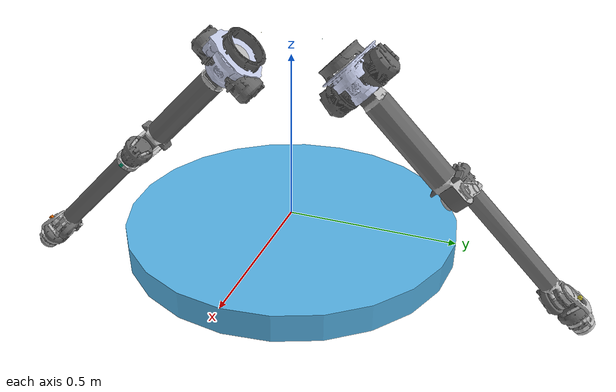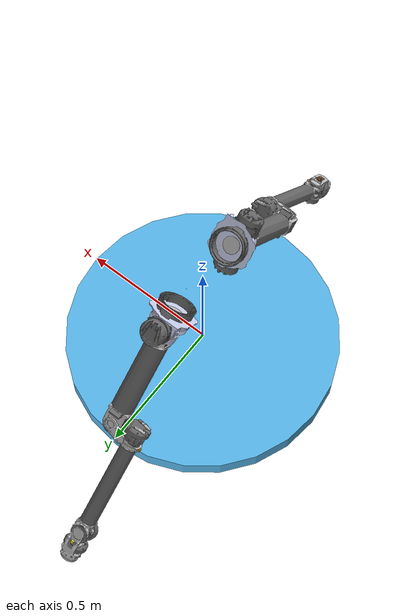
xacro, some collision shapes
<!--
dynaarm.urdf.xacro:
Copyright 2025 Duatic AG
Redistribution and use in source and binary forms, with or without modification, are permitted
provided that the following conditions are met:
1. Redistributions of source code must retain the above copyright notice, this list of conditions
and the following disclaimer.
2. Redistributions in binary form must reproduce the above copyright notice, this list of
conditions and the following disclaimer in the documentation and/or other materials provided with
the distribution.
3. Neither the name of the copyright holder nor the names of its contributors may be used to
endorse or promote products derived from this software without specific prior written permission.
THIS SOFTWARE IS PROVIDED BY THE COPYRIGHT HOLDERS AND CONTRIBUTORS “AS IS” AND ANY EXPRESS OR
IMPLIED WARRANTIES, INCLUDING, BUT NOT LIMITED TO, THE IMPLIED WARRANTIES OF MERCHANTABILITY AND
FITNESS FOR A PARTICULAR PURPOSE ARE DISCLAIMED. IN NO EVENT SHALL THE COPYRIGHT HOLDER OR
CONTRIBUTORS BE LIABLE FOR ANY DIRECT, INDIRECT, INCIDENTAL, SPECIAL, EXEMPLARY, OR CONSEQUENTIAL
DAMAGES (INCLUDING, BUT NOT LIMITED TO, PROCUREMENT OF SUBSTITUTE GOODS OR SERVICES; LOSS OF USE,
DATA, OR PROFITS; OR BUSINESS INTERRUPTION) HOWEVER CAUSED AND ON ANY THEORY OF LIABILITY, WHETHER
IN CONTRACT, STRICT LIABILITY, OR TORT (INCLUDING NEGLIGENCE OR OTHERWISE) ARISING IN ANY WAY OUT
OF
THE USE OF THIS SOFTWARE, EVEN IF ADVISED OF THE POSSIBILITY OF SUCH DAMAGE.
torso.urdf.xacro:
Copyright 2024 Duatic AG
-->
<robot name="dynaarm_dual_with_torso" xmlns:xacro="http://www.ros.org/wiki/xacro">

  <xacro:arg name="tf_prefix" default="" />
  <xacro:arg name="dof" default="6" />
  <xacro:arg name="mode" default="mock" />
  <xacro:arg name="ethercat_bus" default="eth0" />
  <xacro:arg name="covers" default="false" />
  <xacro:arg name="dynaarm_version" default="baracuda12" />

  <!-- Include dynaarm and torso definitions -->
  <xacro:include filename="$(find dynaarm_description)/urdf/dynaarm.urdf.xacro" />
  <xacro:include filename="$(find dynaarm_description)/urdf/torso.urdf.xacro" />

  <link name="world" />

  <!-- Add torso to world -->
  <xacro:torso tf_prefix="$(arg tf_prefix)"
    parent_link="world"
    mode="$(arg mode)">
    <origin xyz="0 0 0.0" rpy="0 0 0" />
  </xacro:torso>

  <!-- Add two arms to torso -->
  <xacro:dynaarm
    tf_prefix="$(arg tf_prefix)_arm1"
    parent_link="left_arm_flange"
    dof="$(arg dof)"
    mode="$(arg mode)"
    ethercat_bus="$(arg ethercat_bus)"
    covers="$(arg covers)"
    version="$(arg dynaarm_version)">
    <origin xyz="0 0 0.095" rpy="0 0 0" />
  </xacro:dynaarm>

  <xacro:dynaarm tf_prefix="$(arg tf_prefix)_arm2"
    parent_link="right_arm_flange"
    dof="$(arg dof)"
    mode="$(arg mode)"
    ethercat_bus="$(arg ethercat_bus)"
    covers="$(arg covers)"
    version="$(arg dynaarm_version)">
    <origin xyz="0 0 0.095" rpy="0 0 0" />
  </xacro:dynaarm>

</robot>

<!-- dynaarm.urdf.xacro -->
<robot name="dynaarm" xmlns:xacro="http://www.ros.org/wiki/xacro">

  <!-- DynaArm Macro-->

  <xacro:macro name="dynaarm"
    params="tf_prefix parent_link collision:='simple' dof mode ethercat_bus drive_order:='' start_in_freeze_mode:=false drive_parameter_folder:='' covers version *origin">

    <!-- Allow the user to pass the drive order file -->
    <xacro:property name="default_drive_order_file" value="$(find dynaarm_description)/urdf/common/${version}/drive_order.yaml" />
    <xacro:property name="drive_order_file" value="${default_drive_order_file if drive_order == '' else drive_order}" />
    <!-- Obtain the EtherCAT drive order (address order list) -->
    <xacro:property name="ethercat_addresses" value="${xacro.load_yaml(drive_order_file)}"/>

    <!--Allow the user to pass a custom folder for drive parameters-->
    <xacro:property name="default_drive_parameter_folder" value="$(find dynaarm_driver)/config/${version}" />
    <xacro:if value="${drive_parameter_folder == ''}">
      <xacro:property name="drive_parameter_folder_internal" value="${default_drive_parameter_folder}" />
    </xacro:if>
    <xacro:unless value="${drive_parameter_folder == ''}">
      <xacro:property name="drive_parameter_folder_internal" value="${drive_parameter_folder}" />
    </xacro:unless>
    <!-- Set ee_parent based on the specified DoF -->
    <xacro:property name="ee_parent" value="${base}" />

    <xacro:include filename="$(find dynaarm_description)/urdf/common/dynaarm_common.urdf.xacro" />
    <!-- Include the version specific information and also load the ethercat addresses from the drive file -->
    <xacro:include filename="$(find dynaarm_description)/urdf/common/${version}/dynaarm_parameters.urdf.xacro" />
    <xacro:include filename="$(find dynaarm_description)/urdf/common/dynaarm.ros2control.xacro" />

    <xacro:dynaarm_joint_fixed joint_name="${joint_base_name}"
      parent="${parent_link}"
      child="${base}">
      <xacro:insert_block name="origin" />
    </xacro:dynaarm_joint_fixed>

    <!-- DynaArm-->
    <xacro:dynaarm_main_body />
    <xacro:dynaarm_tool />

    <!--ros2control-->
    <xacro:dynaarm_ros2_control tf_prefix="${tf_prefix}"
                                ethercat_bus="${ethercat_bus}"
                                start_in_freeze_mode="${start_in_freeze_mode}"
                                drive_parameter_folder="${drive_parameter_folder_internal}"
                                drive_parameter_folder_default="${default_drive_parameter_folder}"
                                ethercat_addresses="${ethercat_addresses}"
                                mode="${mode}"/>
  </xacro:macro>

  <!-- DynaArm Main Body-->
  <xacro:macro name="dynaarm_main_body">

    <!-- dynaarm_base -->
    <xacro:dynaarm_baselink link_name="${base}" file_name="${base_mesh}">
      <base_inertia>
        <xacro:insert_block name="base_inertial" />
      </base_inertia>
      <base_collision>
        <xacro:insert_block name="base_collision" />
      </base_collision>
    </xacro:dynaarm_baselink>

    <!-- Base Covers-->
    <xacro:if value="${covers}">
      <xacro:dynaarm_link link_name="${base}_cover" file_name="${base_cover_mesh}">
        <link_inertia>
          <xacro:insert_block name="base_cover_inertial" />
        </link_inertia>
      </xacro:dynaarm_link>

      <xacro:dynaarm_joint_fixed joint_name="${base}_cover"
        parent="${base}"
        child="${base}_cover">
        <origin xyz="0.0 0.0 0.0" rpy="0.0 0.0 0.0" />
      </xacro:dynaarm_joint_fixed>
    </xacro:if>

    <!-- 1 DoF -->
    <xacro:if value="${dof >= 1}">

      <!-- dynaarm_SHOULDER -->
      <xacro:dynaarm_link_w_collision link_name="${link01}" file_name="${link01_mesh}">
        <link_inertia>
          <xacro:insert_block name="link01_inertial" />
        </link_inertia>
        <link_collision>
          <xacro:insert_block name="link01_collision" />
        </link_collision>
      </xacro:dynaarm_link_w_collision>

      <!-- shoulder_rotation -->
      <xacro:dynaarm_revolute_joint joint_name="${joint_1_name}"
        parent="${base}"
        child="${link01}"
        joint_axis_xyz="${joint_1_axis_xyz}"
        joint_lower_limit="${joint_1_lower_limit}"
        joint_upper_limit="${joint_1_upper_limit}"
        joint_limit_vel="${baboon_max_speed}"
        joint_limit_effort="${baboon_peak_torque}"
        joint_type="${joint_1_joint_type}">
        <origin xyz="${joint_1_origin_xyz}" rpy="${joint_1_origin_rpy}" />
      </xacro:dynaarm_revolute_joint>

      <!-- 1 Dof & Covers-->
      <xacro:if value="${covers}">
        <xacro:dynaarm_link link_name="${link01}_cover" file_name="${link01_cover_mesh}">
          <link_inertia>
            <xacro:insert_block name="link01_cover_inertial" />
          </link_inertia>
        </xacro:dynaarm_link>

        <xacro:dynaarm_joint_fixed joint_name="${link01}_cover" parent="${link01}"
          child="${link01}_cover">
          <origin xyz="0.0 0.0 0.0" rpy="0.0 0.0 0.0" />
        </xacro:dynaarm_joint_fixed>
      </xacro:if>

    </xacro:if>

    <!-- 2 DoF -->
    <xacro:if value="${dof >= 2}">

      <!-- dynaarm_UPPERARM -->
      <xacro:dynaarm_link_w_collision link_name="${link02}" file_name="${link02_mesh}">
        <link_inertia>
          <xacro:insert_block name="link02_inertial" />
        </link_inertia>
        <link_collision>
          <xacro:insert_block name="link02_collision" />
        </link_collision>
      </xacro:dynaarm_link_w_collision>

      <!-- shoulder_flexion -->
      <xacro:dynaarm_revolute_joint joint_name="${joint_2_name}"
        parent="${link01}"
        child="${link02}"
        joint_axis_xyz="${joint_2_axis_xyz}"
        joint_lower_limit="${joint_2_lower_limit}"
        joint_upper_limit="${joint_2_upper_limit}"
        joint_limit_vel="${baboon_max_speed}"
        joint_limit_effort="${baboon_peak_torque}"
        joint_type="${joint_2_joint_type}">
        <origin xyz="${joint_2_origin_xyz}" rpy="${joint_2_origin_rpy}" />
      </xacro:dynaarm_revolute_joint>

      <!-- 2 Dof & Covers-->
      <xacro:if value="${covers}">
        <xacro:dynaarm_link link_name="${link02}_cover" file_name="${link02_cover_mesh}">
          <link_inertia>
            <xacro:insert_block name="link02_cover_inertial" />
          </link_inertia>
        </xacro:dynaarm_link>

        <xacro:dynaarm_joint_fixed joint_name="${link02}_cover" parent="${link02}"
          child="${link02}_cover">
          <origin xyz="0.0 0.0 0.0" rpy="0.0 0.0 0.0" />
        </xacro:dynaarm_joint_fixed>
      </xacro:if>
    </xacro:if>

    <!-- 3 DoF -->
    <xacro:if value="${dof >= 3}">

      <!-- dynaarm_ELBOW -->
      <xacro:dynaarm_link_w_collision link_name="${link03}" file_name="${link03_mesh}">
        <link_inertia>
          <xacro:insert_block name="link03_inertial" />
        </link_inertia>
        <link_collision>
          <xacro:insert_block name="link03_collision" />
        </link_collision>
      </xacro:dynaarm_link_w_collision>

      <!-- elbow_flexion -->
      <xacro:dynaarm_revolute_joint joint_name="${joint_3_name}"
        parent="${link02}"
        child="${link03}"
        joint_axis_xyz="${joint_3_axis_xyz}"
        joint_lower_limit="${joint_3_lower_limit}"
        joint_upper_limit="${joint_3_upper_limit}"
        joint_limit_vel="${baboon_max_speed}"
        joint_limit_effort="${baboon_peak_torque}"
        joint_type="${joint_3_joint_type}">
        <origin xyz="${joint_3_origin_xyz}" rpy="${joint_3_origin_rpy}" />
      </xacro:dynaarm_revolute_joint>

      <!--dynaarm_ELBOW_CAMERA_BASE-->
      <xacro:if value="${version == 'baracuda12'}">

        <!-- Virtual elbow camera link -->
        <xacro:virtual_link link_name="${link03_cam}" />

        <!-- Camera fixed on elbow -->
        <xacro:dynaarm_joint_fixed joint_name="${joint_3_cam_name}"
          parent="${link03}"
          child="${link03_cam}">
          <origin xyz="${joint_3_cam_origin_xyz}" rpy="${joint_3_cam_origin_rpy}" />
        </xacro:dynaarm_joint_fixed>
      </xacro:if>

      <!-- 3 Dof & Covers-->
      <xacro:if value="${covers}">
        <xacro:dynaarm_link link_name="${link03}_cover" file_name="${link03_cover_mesh}">
          <link_inertia>
            <xacro:insert_block name="link03_cover_inertial" />
          </link_inertia>
        </xacro:dynaarm_link>

        <xacro:dynaarm_joint_fixed joint_name="${link03}_cover" parent="${link03}"
          child="${link03}_cover">
          <origin xyz="0.0 0.0 0.0" rpy="0.0 0.0 0.0" />
        </xacro:dynaarm_joint_fixed>
      </xacro:if>
    </xacro:if>

    <!-- 4 DoF -->
    <xacro:if value="${dof >= 4}">

      <xacro:if value="${version == 'arowana4'}">
        <!-- dynaarm_FOREARM -->
        <xacro:dynaarm_link link_name="${link04}" file_name="${link04_mesh}">
          <link_inertia>
            <xacro:insert_block name="link04_inertial" />
          </link_inertia>
        </xacro:dynaarm_link>
      </xacro:if>

      <xacro:if value="${version == 'baracuda12'}">
        <!-- dynaarm_FOREARM -->
        <xacro:dynaarm_link_w_collision link_name="${link04}" file_name="${link04_mesh}">
          <link_inertia>
            <xacro:insert_block name="link04_inertial" />
          </link_inertia>

          <link_collision>
            <xacro:insert_block name="link04_collision" />
          </link_collision>
        </xacro:dynaarm_link_w_collision>
      </xacro:if>

      <!-- forearm_rotation -->
      <xacro:dynaarm_revolute_joint joint_name="${joint_4_name}" parent="${link03}"
        child="${link04}"
        joint_axis_xyz="${joint_4_axis_xyz}"
        joint_lower_limit="${joint_4_lower_limit}"
        joint_upper_limit="${joint_4_upper_limit}"
        joint_limit_vel="${baboon_max_speed}"
        joint_limit_effort="${baboon_peak_torque}"
        joint_type="${joint_4_joint_type}">
        <origin xyz="${joint_4_origin_xyz}" rpy="${joint_4_origin_rpy}" />
      </xacro:dynaarm_revolute_joint>

      <!-- 4 Dof & Covers-->
      <xacro:if value="${covers}">
        <xacro:dynaarm_link link_name="${link04}_cover" file_name="${link04_cover_mesh}">
          <link_inertia>
            <xacro:insert_block name="link04_cover_inertial" />
          </link_inertia>
        </xacro:dynaarm_link>

        <xacro:dynaarm_joint_fixed joint_name="${link04}_cover" parent="${link04}"
          child="${link04}_cover">
          <origin xyz="0.0 0.0 0.0" rpy="0.0 0.0 0.0" />
        </xacro:dynaarm_joint_fixed>
      </xacro:if>
    </xacro:if>

    <!-- 5 DoF -->
    <xacro:if value="${dof >= 5}">

      <!-- WRIST_1 -->
      <xacro:dynaarm_link_w_collision link_name="${link05}" file_name="${link05_mesh}">
        <link_inertia>
          <xacro:insert_block name="link05_inertial" />
        </link_inertia>
        <link_collision>
          <xacro:insert_block name="link05_collision" />
        </link_collision>
      </xacro:dynaarm_link_w_collision>

      <!-- wrist_flexion -->
      <xacro:dynaarm_revolute_joint joint_name="${joint_5_name}" parent="${link04}"
        child="${link05}"
        joint_axis_xyz="${joint_5_axis_xyz}"
        joint_lower_limit="${joint_5_lower_limit}"
        joint_upper_limit="${joint_5_upper_limit}"
        joint_limit_vel="${baboon_max_speed}"
        joint_limit_effort="${baboon_peak_torque}"
        joint_type="${joint_5_joint_type}">
        <origin xyz="${joint_5_origin_xyz}" rpy="${joint_5_origin_rpy}" />
      </xacro:dynaarm_revolute_joint>

      <xacro:if value="${version == 'baracuda12'}">
        <!-- Virtual wrist camera link -->
        <xacro:virtual_link link_name="${link05_cam}" />

        <!-- Camera fixed on wrist1 -->
        <xacro:dynaarm_joint_fixed joint_name="${joint_5_cam_name}"
          parent="${link05}"
          child="${link05_cam}">
          <origin xyz="${joint_5_cam_origin_xyz}" rpy="${joint_5_cam_origin_rpy}" />
        </xacro:dynaarm_joint_fixed>
      </xacro:if>

      <!-- 5 Dof & Covers-->
      <xacro:if value="${covers}">
        <xacro:dynaarm_link link_name="${link05}_cover" file_name="${link05_cover_mesh}">
          <link_inertia>
            <xacro:insert_block name="link05_cover_inertial" />
          </link_inertia>
        </xacro:dynaarm_link>

        <xacro:dynaarm_joint_fixed joint_name="${link05}_cover" parent="${link05}"
          child="${link05}_cover">
          <origin xyz="0.0 0.0 0.0" rpy="0.0 0.0 0.0" />
        </xacro:dynaarm_joint_fixed>
      </xacro:if>
    </xacro:if>

    <!-- 6 DoF -->
    <xacro:if value="${dof >= 6}">

      <xacro:if value="${version == 'arowana4'}">
        <!-- WRIST_2 -->
        <xacro:dynaarm_link link_name="${link06}" file_name="${link06_mesh}">
          <link_inertia>
            <xacro:insert_block name="link06_inertial" />
          </link_inertia>
        </xacro:dynaarm_link>
      </xacro:if>

      <xacro:if value="${version == 'baracuda12'}">
        <!-- WRIST_2 -->
        <xacro:dynaarm_link_w_collision link_name="${link06}" file_name="${link06_mesh}">
          <link_inertia>
            <xacro:insert_block name="link06_inertial" />
          </link_inertia>
          <link_collision>
            <xacro:insert_block name="link06_collision" />
          </link_collision>
        </xacro:dynaarm_link_w_collision>
      </xacro:if>

      <!-- wrist_rotation -->
      <xacro:dynaarm_revolute_joint joint_name="${joint_6_name}" parent="${link05}"
        child="${link06}"
        joint_axis_xyz="${joint_6_axis_xyz}"
        joint_lower_limit="${joint_6_lower_limit}"
        joint_upper_limit="${joint_6_upper_limit}"
        joint_limit_vel="${baboon_max_speed}"
        joint_limit_effort="${baboon_peak_torque}"
        joint_type="${joint_6_joint_type}">
        <origin xyz="${joint_6_origin_xyz}" rpy="${joint_6_origin_rpy}" />
      </xacro:dynaarm_revolute_joint>

    </xacro:if>

  </xacro:macro>

  <!-- DynaArm Tool-->
  <xacro:macro name="dynaarm_tool">
      <xacro:virtual_link link_name="${end_effector}" />
      <xacro:dynaarm_joint_fixed joint_name="${joint_ee_name}"
          parent="${ee_parent}"
          child="${end_effector}">
          <origin xyz="${joint_ee_origin_xyz}" rpy="${joint_ee_origin_rpy}" />
      </xacro:dynaarm_joint_fixed>
  </xacro:macro>

</robot>

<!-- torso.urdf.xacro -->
<robot name="torso" xmlns:xacro="http://www.ros.org/wiki/xacro">

  <!-- Torso Macro-->

  <xacro:macro name="torso" params="tf_prefix parent_link mode *origin">

    <xacro:include filename="$(find dynaarm_description)/urdf/common/torso/torso_common.urdf.xacro" />
    <xacro:include filename="$(find dynaarm_description)/urdf/common/torso/torso_parameters.urdf.xacro" />

    <xacro:torso_joint_fixed joint_name="${joint_tbase_name}"
      parent="${parent_link}"
      child="${tbase}">
      <xacro:insert_block name="origin" />
    </xacro:torso_joint_fixed>

    <!-- Torso -->
    <xacro:torso_main_body />
    <xacro:torso_left_arm />
    <xacro:torso_right_arm />

    <!-- Gazebo plugin -->
    <xacro:if value="${mode == 'sim'}">
      <xacro:torso_gazebo />
    </xacro:if>

  </xacro:macro>

  <!-- DynaArm Main Body-->
  <xacro:macro name="torso_main_body">
    <!-- torso_base -->
    <xacro:torso_link_w_collision link_name="${tbase}" file_name="${torso_mesh}">
      <tbase_inertia>
        <xacro:insert_block name="tbase_inertial" />
      </tbase_inertia>
      <tbase_collision>
        <xacro:insert_block name="tbase_collision" />
      </tbase_collision>
    </xacro:torso_link_w_collision>
  </xacro:macro>

  <!-- Torso left arm-->
  <xacro:macro name="torso_left_arm">
    <xacro:torso_virtual_link link_name="${torso_left_arm}" />
    <xacro:torso_joint_fixed joint_name="${joint_left_arm_name}"
      parent="${left_arm_parent}"
      child="${torso_left_arm}">
      <origin xyz="${joint_left_arm_origin_xyz}" rpy="${joint_left_arm_origin_rpy}" />
    </xacro:torso_joint_fixed>
  </xacro:macro>

  <!-- Torso right arm-->
  <xacro:macro name="torso_right_arm">
    <xacro:torso_virtual_link link_name="${torso_right_arm}" />
    <xacro:torso_joint_fixed joint_name="${joint_right_arm_name}"
      parent="${right_arm_parent}"
      child="${torso_right_arm}">
      <origin xyz="${joint_right_arm_origin_xyz}" rpy="${joint_right_arm_origin_rpy}" />
    </xacro:torso_joint_fixed>
  </xacro:macro>

   <!-- Torso Gazebo-->
  <xacro:macro name="torso_gazebo">
    <gazebo>
      <plugin filename="libgz_ros2_control-system.so"
        name="gz_ros2_control::GazeboSimROS2ControlPlugin">
        <parameters>$(find dynaarm_examples)/config/controllers.yaml</parameters>
      </plugin>
    </gazebo>
  </xacro:macro>

</robot>

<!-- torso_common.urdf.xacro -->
<robot xmlns:xacro="http://www.ros.org/wiki/xacro">

    <!-- Torso Link Macro -->
    <xacro:macro name="torso_link"
        params="link_name file_name **link_inertia">
        <link name="${link_name}">
            <visual>
                <geometry>
                    <mesh
                        filename="file://$(find dynaarm_description)/meshes/torso/${file_name}"
                        scale="1.0 1.0 1.0" />
                </geometry>
            </visual>
            <xacro:insert_block name="link_inertia" />
        </link>
    </xacro:macro>

    <!-- Torso Link With Collision Macro -->
    <xacro:macro name="torso_link_w_collision"
        params="link_name file_name **link_inertia **link_collision">
        <link name="${link_name}">
            <visual>
                <geometry>
                    <mesh
                        filename="file://$(find dynaarm_description)/meshes/torso/${file_name}"
                        scale="1.0 1.0 1.0" />
                </geometry>
            </visual>
            <xacro:insert_block name="link_inertia" />
            <xacro:insert_block name="link_collision" />
        </link>
    </xacro:macro>

    <!-- Torso Virtual Link Macro -->
    <xacro:macro name="torso_virtual_link" params="link_name">
        <link name="${link_name}">
            <visual>
                <origin xyz="0 0 0" rpy="0 0 0" />
                <geometry>
                    <box size="0.001 0.001 0.001" />
                </geometry>
            </visual>
            <inertial>
                <origin xyz="0.0 0.0 0.0" rpy="0 0 0" />
                <mass value="0.001" />
                <inertia ixx="0.0000001" ixy="0.0" iyy="0.0000001" ixz="0.0" iyz="0.0"
                    izz="0.0000001" />
            </inertial>
        </link>
        <!-- Gazebo customization -->
        <!-- Contact model -->
        <xacro:property name="kp" value="10000.0" />
        <xacro:property name="kd" value="10.0" />
        <xacro:property name="mu" value="0.8" />
        <gazebo reference="${link_name}">
            <kp>${kp}</kp>
            <kd>${kd}</kd>
            <mu1>${mu}</mu1>
            <mu2>${mu}</mu2>
        </gazebo>
    </xacro:macro>

    <!-- Torso Revolute Joint Macro -->
    <xacro:macro name="torso_revolute_joint"
        params="joint_name
                parent
                child
                joint_axis_xyz
                joint_lower_limit
                joint_upper_limit
                joint_limit_vel
                joint_limit_effort
                joint_type
                *origin">
        <joint name="${joint_name}" type="${joint_type}">
            <parent link="${parent}" />
            <child link="${child}" />
            <axis xyz="${joint_axis_xyz}" />
            <limit effort="${joint_limit_effort}" command_effort="${joint_limit_effort}"
                current="10" gear_velocity="${joint_limit_vel}" velocity="${joint_limit_vel}"
                lower="${joint_lower_limit}" upper="${joint_upper_limit}" />
            <!-- limit effort also defines torque limit and freeze controller gains -->
            <xacro:insert_block name="origin" />
        </joint>
    </xacro:macro>

    <!-- Torso Fixed Joint Macro -->
    <xacro:macro name="torso_joint_fixed"
        params="joint_name parent child *origin">
        <joint name="${joint_name}" type="fixed">
            <parent link="${parent}" />
            <child link="${child}" />
            <limit effort="2000" velocity="0" lower="0" upper="0" />
            <xacro:insert_block name="origin" />
        </joint>
    </xacro:macro>

</robot>

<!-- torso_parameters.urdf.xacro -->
<robot xmlns:xacro="http://www.ros.org/wiki/xacro">
  <xacro:property name="torso_version_name" value="v1"/>

  <xacro:property name="J_PI" value="3.14159265359" />

  <xacro:property name="baboon_peak_torque" value="40" />
  <xacro:property name="baboon_max_speed" value="4" />

  <xacro:property name="mm2_to_m2" value="0.000001" />
  <xacro:property name="mm_to_m" value="0.001" />

  <!-- Links -->
  <xacro:property name="tbase" value="${tf_prefix}tbase" />
  <xacro:property name="torso_left_arm" value="${tf_prefix}left_arm_flange" />
  <xacro:property name="torso_right_arm" value="${tf_prefix}right_arm_flange" />

  <!-- Meshes -->
  <xacro:property name="torso_mesh" value="torso_mesh.stl" />

  <!-- Joint properties -->
  <xacro:property name="joint_tbase_name" value="${tf_prefix}joint_tbase" />
  <xacro:property name="joint_tbase_joint_type" value="revolute" />
  <xacro:property name="joint_tbase_axis_xyz" value="0 0 0" />
  <xacro:property name="joint_tbase_origin_xyz" value="0 0 0" />
  <xacro:property name="joint_tbase_origin_rpy" value="0 0 0" />

  <xacro:property name="joint_left_arm_name" value="${tf_prefix}left_arm_flange_fix_joint" />
  <xacro:property name="joint_left_arm_origin_xyz" value="0.0 0.088 0.552" />
  <xacro:property name="joint_left_arm_origin_rpy" value="2.3562 0.0 ${-J_PI}" />

  <xacro:property name="joint_right_arm_name" value="${tf_prefix}right_arm_flange_fix_joint" />
  <xacro:property name="joint_right_arm_origin_xyz" value="0.0 -0.088 0.552" />
  <xacro:property name="joint_right_arm_origin_rpy" value="2.3562 0.0 0.0" />

  <!-- Base Robot -->
  <xacro:property name="tbase_inertial">
    <inertial>
      <mass value="1.894" />
      <origin
        xyz="${0.008222641*mm_to_m} ${-0.310936808*mm_to_m} ${-36.738569268*mm_to_m}"
        rpy="0 0 0" />
      <inertia ixx="${2767.258474185*mm2_to_m2}" iyy="${2895.160105441*mm2_to_m2}"
        izz="${3138.952392041*mm2_to_m2}" ixy="${0.393414115*mm2_to_m2}"
        ixz="${-0.149570272*mm2_to_m2}" iyz="${25.32409214*mm2_to_m2}" />
    </inertial>
  </xacro:property>

  <!-- Collision properties -->
  <xacro:property name="tbase_collision">
    <collision>
      <origin xyz="0 0 -0.04" rpy="0 0 0" />
      <geometry>
        <cylinder radius="0.5" length="0.08" />
      </geometry>
    </collision>
  </xacro:property>

  <!-- set the left_arm_parent relative to the tbase -->
  <xacro:property name="left_arm_parent" value="${tbase}" />

  <!-- set the right_arm_parent relative to the tbase -->
  <xacro:property name="right_arm_parent" value="${tbase}" />

</robot>

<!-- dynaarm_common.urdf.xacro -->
<robot xmlns:xacro="http://www.ros.org/wiki/xacro">

    <!-- DynaArm Base Link Macro -->
    <xacro:macro name="dynaarm_baselink"
        params="link_name file_name **base_inertia **base_collision">
        <link name="${link_name}">
            <visual>
                <geometry>
                    <mesh
                        filename="file://$(find dynaarm_description)/meshes/${version}/${file_name}"
                        scale="1.0 1.0 1.0" />
                </geometry>
                <material name="carbon_fiber">
                    <color rgba="0.792156862745098 0.819607843137255 0.933333333333333 1" />
                </material>
            </visual>
            <xacro:insert_block name="base_collision" />
            <xacro:insert_block name="base_inertia" />
        </link>
    </xacro:macro>

    <!-- DynaArm Link Macro -->
    <xacro:macro name="dynaarm_link"
        params="link_name file_name **link_inertia">
        <link name="${link_name}">
            <visual>
                <geometry>
                    <mesh
                        filename="file://$(find dynaarm_description)/meshes/${version}/${file_name}"
                        scale="1.0 1.0 1.0" />
                </geometry>
            </visual>
            <xacro:insert_block name="link_inertia" />
        </link>
    </xacro:macro>

    <!-- DynaArm Link With Collision Macro -->
    <xacro:macro name="dynaarm_link_w_collision"
        params="link_name file_name **link_inertia **link_collision">
        <link name="${link_name}">
            <visual>
                <geometry>
                    <mesh
                        filename="file://$(find dynaarm_description)/meshes/${version}/${file_name}"
                        scale="1.0 1.0 1.0" />
                </geometry>
            </visual>
            <xacro:insert_block name="link_inertia" />
            <xacro:insert_block name="link_collision" />
        </link>
    </xacro:macro>

    <!-- DynaArm Virtual Link Macro -->
    <xacro:macro name="virtual_link" params="link_name mass:=0.001 ixx:=0.0000001 iyy:=0.0000001 izz:=0.0000001">
        <link name="${link_name}">
            <visual>
                <origin xyz="0 0 0" rpy="0 0 0" />
                <geometry>
                    <box size="0.01 0.01 0.01" />
                </geometry>
            </visual>
            <inertial>
                <origin xyz="0.0 0.0 0.0" rpy="0 0 0" />
                <mass value="${mass}" />
                <inertia ixx="${ixx}" ixy="0.0" iyy="${iyy}" ixz="0.0" iyz="0.0" izz="${izz}" />
            </inertial>
            <collision>
                <origin xyz="0 0 0" rpy="0 0 0" />
                <geometry>
                    <box size="0.01 0.01 0.01" />
                </geometry>
            </collision>
        </link>
        <!-- Gazebo customization -->
        <!-- Contact model -->
        <xacro:property name="kp" value="10000.0" />
        <xacro:property name="kd" value="10.0" />
        <xacro:property name="mu" value="0.8" />
        <gazebo reference="${link_name}">
            <kp>${kp}</kp>
            <kd>${kd}</kd>
            <mu1>${mu}</mu1>
            <mu2>${mu}</mu2>
        </gazebo>
    </xacro:macro>

    <!-- DynaArm Revolute Joint Macro -->
    <xacro:macro name="dynaarm_revolute_joint"
        params="joint_name
                parent
                child
                joint_axis_xyz
                joint_lower_limit
                joint_upper_limit
                joint_limit_vel
                joint_limit_effort
                joint_type
                *origin">
        <joint name="${joint_name}" type="${joint_type}">
            <parent link="${parent}" />
            <child link="${child}" />
            <axis xyz="${joint_axis_xyz}" />
            <limit effort="${joint_limit_effort}" command_effort="${joint_limit_effort}"
                current="10" gear_velocity="${joint_limit_vel}" velocity="${joint_limit_vel}"
                lower="${joint_lower_limit}" upper="${joint_upper_limit}" />
            <!-- limit effort also defines torque limit and freeze controller gains -->
            <xacro:insert_block name="origin" />
        </joint>
    </xacro:macro>

    <!-- DynaArm Fixed Joint Macro -->
    <xacro:macro name="dynaarm_joint_fixed"
        params="joint_name parent child *origin">
        <joint name="${joint_name}" type="fixed">
            <parent link="${parent}" />
            <child link="${child}" />
            <limit effort="2000" velocity="0" lower="0" upper="0" />
            <xacro:insert_block name="origin" />
        </joint>
    </xacro:macro>

</robot>

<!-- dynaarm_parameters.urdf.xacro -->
<robot xmlns:xacro="http://www.ros.org/wiki/xacro">
  <xacro:property name="arm_version_name" value="baracuda12"/>
  <!-- Obtain the ethercat drive order (address order list)-->
  <xacro:property name="drive_order_path" value="$(find dynaarm_description)/urdf/common/${arm_version_name}/drive_order.yaml"/>
  <xacro:property name="ethercat_addresses" value="${xacro.load_yaml(drive_order_path)}"/>

  <xacro:property name="J_PI" value="3.14159265359" />

  <xacro:property name="baboon_peak_torque" value="40" />
  <xacro:property name="baboon_max_speed" value="4" />

  <xacro:property name="mm2_to_m2" value="0.000001" />
  <xacro:property name="mm_to_m" value="0.001" />

  <xacro:property name="distance_from_world_general_flange" value="0.001" />
  <xacro:property name="distance_from_world_torso_flange" value="0.00096" />

  <!-- Links -->
  <xacro:property name="base" value="${tf_prefix}base" />
  <xacro:property name="link01" value="${tf_prefix}shoulder" />
  <xacro:property name="link02" value="${tf_prefix}upperarm" />
  <xacro:property name="link03" value="${tf_prefix}elbow" />
  <xacro:property name="link03_cam" value="${tf_prefix}elbow_camera_mount" />
  <xacro:property name="link04" value="${tf_prefix}forearm" />
  <xacro:property name="link05" value="${tf_prefix}wrist_1" />
  <xacro:property name="link05_cam" value="${tf_prefix}wrist_1_camera_mount" />
  <xacro:property name="link06" value="${tf_prefix}wrist_2" />
  <xacro:property name="end_effector" value="${tf_prefix}flange" />

  <!-- Meshes -->
  <xacro:if value="${covers}">
    <xacro:property name="base_mesh" value="base_mesh.dae" />
    <xacro:property name="link01_mesh" value="shoulder_mesh.dae" />
    <xacro:property name="link02_mesh" value="upperarm_mesh.dae" />
    <xacro:property name="link03_mesh" value="elbow_mesh.dae" />
    <xacro:property name="link04_mesh" value="forearm_mesh.dae" />
    <xacro:property name="link05_mesh" value="wrist1_mesh.dae" />
    <xacro:property name="link06_mesh" value="wrist2_mesh.dae" />

    <xacro:property name="base_cover_mesh" value="base_mesh.dae" />
    <xacro:property name="link01_cover_mesh" value="shoulder_mesh.dae" />
    <xacro:property name="link02_cover_mesh" value="upperarm_mesh.dae" />
    <xacro:property name="link03_cover_mesh" value="elbow_mesh.dae" />
    <xacro:property name="link04_cover_mesh" value="forearm_mesh.dae" />
    <xacro:property name="link05_cover_mesh" value="wrist1_mesh.dae" />
    <xacro:property name="link06_cover_mesh" value="wrist2_mesh.dae" />
  </xacro:if>

  <xacro:unless value="${covers}">
    <xacro:property name="base_mesh" value="base_mesh.dae" />
    <xacro:property name="link01_mesh" value="shoulder_mesh.dae" />
    <xacro:property name="link02_mesh" value="upperarm_mesh.dae" />
    <xacro:property name="link03_mesh" value="elbow_mesh.dae" />
    <xacro:property name="link04_mesh" value="forearm_mesh.dae" />
    <xacro:property name="link05_mesh" value="wrist1_mesh.dae" />
    <xacro:property name="link06_mesh" value="wrist2_mesh.dae" />
  </xacro:unless>

  <!-- Joint properties -->
  <xacro:property name="joint_base_name" value="${tf_prefix}joint_base" />
  <xacro:property name="joint_base_joint_type" value="revolute" />
  <xacro:property name="joint_base_axis_xyz" value="0 0 0" />
  <xacro:property name="joint_base_origin_xyz" value="0 0 0" />
  <xacro:property name="joint_base_origin_rpy" value="0 0 0" />

  <xacro:property name="joint_1_name" value="${tf_prefix}shoulder_rotation" />
  <xacro:property name="joint_1_joint_type" value="revolute" />
  <xacro:property name="joint_1_axis_xyz" value="0 0 1" />
  <xacro:property name="joint_1_origin_xyz" value="0 0 0.0105" />
  <xacro:property name="joint_1_origin_rpy" value="0 0 0" />
  <xacro:property name="joint_1_lower_limit" value="${-J_PI - J_PI/2 + 0.4}" />
  <xacro:property name="joint_1_upper_limit" value="${J_PI + J_PI/2 - 0.4}" />

  <xacro:property name="joint_2_name" value="${tf_prefix}shoulder_flexion" />
  <xacro:property name="joint_2_joint_type" value="revolute" />
  <xacro:property name="joint_2_axis_xyz" value="0 0 1" />
  <xacro:property name="joint_2_origin_xyz" value="0 0 0.047" />
  <xacro:property name="joint_2_origin_rpy" value="${J_PI/2} ${-J_PI/2} 0" />
  <xacro:property name="joint_2_lower_limit" value="${-J_PI/2 - 0.15}" />
  <xacro:property name="joint_2_upper_limit" value="${J_PI/2 + 0.15}" />

  <xacro:property name="joint_3_name" value="${tf_prefix}elbow_flexion" />
  <xacro:property name="joint_3_joint_type" value="revolute" />
  <xacro:property name="joint_3_axis_xyz" value="0 0 1" />
  <xacro:property name="joint_3_origin_xyz" value="0.4127 0 0" />
  <xacro:property name="joint_3_origin_rpy" value="0 0 0" />
  <xacro:property name="joint_3_lower_limit" value="0.00" />
  <xacro:property name="joint_3_upper_limit" value="${J_PI - 0.05}" />

  <xacro:property name="joint_3_cam_name" value="${tf_prefix}elbow_camera" />
  <xacro:property name="joint_3_cam_joint_type" value="fixed" />
  <xacro:property name="joint_3_cam_axis_xyz" value="0 0 0" />
  <xacro:property name="joint_3_cam_origin_xyz" value="0.0345 -0.1235 0" />
  <xacro:property name="joint_3_cam_origin_rpy" value="0.0 0.0 0.0" />

  <xacro:property name="joint_4_name" value="${tf_prefix}forearm_rotation" />
  <xacro:property name="joint_4_joint_type" value="revolute" />
  <xacro:property name="joint_4_axis_xyz" value="0 0 1" />
  <xacro:property name="joint_4_origin_xyz" value="0.0262 -0.0855 0" />
  <xacro:property name="joint_4_origin_rpy" value="${J_PI/2} ${J_PI/2} ${J_PI/2}" />
  <xacro:property name="joint_4_lower_limit" value="${-J_PI - J_PI/2}" />
  <xacro:property name="joint_4_upper_limit" value="${J_PI + J_PI/2}" />

  <xacro:property name="joint_5_name" value="${tf_prefix}wrist_flexion" />
  <xacro:property name="joint_5_joint_type" value="revolute" />
  <xacro:property name="joint_5_axis_xyz" value="0 0 1" />
  <xacro:property name="joint_5_origin_xyz" value="0.0295 0 0.4207" />
  <xacro:property name="joint_5_origin_rpy" value="0 ${-J_PI/2} 0" />
  <xacro:property name="joint_5_lower_limit" value="${-J_PI/2 -0.25}" />
  <xacro:property name="joint_5_upper_limit" value="${J_PI/2 + 0.25}" />

  <xacro:property name="joint_5_cam_name" value="${tf_prefix}wrist_flexion_camera" />
  <xacro:property name="joint_5_cam_joint_type" value="fixed" />
  <xacro:property name="joint_5_cam_axis_xyz" value="0 0 0" />
  <xacro:property name="joint_5_cam_origin_xyz" value="0.032 0 -0.017" />
  <xacro:property name="joint_5_cam_origin_rpy" value="0.0 0.0 0.0" />

  <xacro:property name="joint_6_name" value="${tf_prefix}wrist_rotation" />
  <xacro:property name="joint_6_joint_type" value="revolute" />
  <xacro:property name="joint_6_axis_xyz" value="0 0 1" />
  <xacro:property name="joint_6_origin_xyz" value="0.117 0.0 0.0295" />
  <xacro:property name="joint_6_origin_rpy" value="${-J_PI/2} ${J_PI/2} ${-J_PI/2}" />
  <xacro:property name="joint_6_lower_limit" value="${-J_PI - J_PI/2}" />
  <xacro:property name="joint_6_upper_limit" value="${J_PI + J_PI/2}" />

  <xacro:property name="joint_ee_name" value="${tf_prefix}flange_fix_joint" />
  <xacro:property name="joint_ee_xyz" value="0.0 0.0 0.009" />
  <xacro:property name="joint_ee_origin_xyz" value="0.0 0.0 0.009" />
  <xacro:property name="joint_ee_origin_4dof_xyz" value="0.0 0.0 0.009" />
  <xacro:property name="joint_ee_origin_rpy" value="0.0 0.0 ${J_PI/2}" />
  <xacro:property name="joint_ee_origin_4dof_rpy" value="0.0 0.0 ${J_PI/2}" />
  <xacro:property name="joint_ee_rpy" value="0 0 0" />

  <!-- Base Robot -->
  <xacro:property name="base_inertial">
    <inertial>
      <mass value="2.00205474" />
      <origin
        xyz="0.00347077 0.00328869 -0.0488212"
        rpy="0 0 0" />
      <inertia ixx="0.00403342" iyy="0.00417534"
        izz="0.00460211" ixy="0.00040828"
        ixz="-0.00018775" iyz="-0.0001821" />
    </inertial>
  </xacro:property>

  <!-- Shoulder -->
  <xacro:property name="link01_inertial">
    <inertial>
      <mass value="2.73096676" />
      <origin xyz="0.00001348 0.00013521 0.0430259" rpy="0 0 0" />
      <inertia ixx="0.01291668" iyy="0.00874231"
        izz="0.01243436" ixy="0.0000044"
        ixz="-0.00000179" iyz="-0.00000203" />
    </inertial>
  </xacro:property>

  <!-- Upper Arm -->
  <xacro:property name="link02_inertial">
    <inertial>
      <mass value="2.12040464" />
      <origin xyz="0.20391301 -0.00000528 -0.00015224"
        rpy="0 0 0" />
      <inertia ixx="0.00155499" iyy="0.05067934"
        izz="0.0507131" ixy="0.00000098"
        ixz="0.00004108" iyz="-0.00000143" />
    </inertial>
  </xacro:property>

  <!-- Elbow -->
  <xacro:property name="link03_inertial">
    <inertial>
      <mass value="0.82320237" />
      <origin xyz="0.00383866 -0.07802638 -0.00026928" rpy="0 0 0" />
      <inertia ixx="0.00107419" iyy="0.00087121"
        izz="0.00113856" ixy="0.00004166"
        ixz="-0.00000398" iyz="-0.0000119" />
    </inertial>
  </xacro:property>

  <!-- Camera Mounting Point 1 -->
  <xacro:property name="link03_cam_inertial">
    <inertial>
      <mass value="1e-6" />

      <origin xyz="0.0 0.0 0.0" rpy="0 0 0" />
      <inertia ixx="1e-6" iyy="1e-6"
        izz="1e-6" ixy="1e-6"
        ixz="1e-6" iyz="1e-6" />
    </inertial>
  </xacro:property>

  <!-- Forearm -->
  <xacro:property name="link04_inertial">
    <inertial>
      <mass value="1.15674546" />
      <origin xyz="-0.00115165 0.00001056 0.30067314" rpy="0 0 0" />
      <inertia ixx="0.03129519" iyy="0.03125954"
        izz="0.00090392" ixy="0.00000151"
        ixz="-0.00017171" iyz="0.00000159" />
    </inertial>
  </xacro:property>

  <!-- wrist_1 -->
  <xacro:property name="link05_inertial">
    <inertial>
      <mass value="1.15007482" />
      <origin xyz="0.07972553 -0.00005038 0.02334747" rpy="0 0 0" />
      <inertia ixx="0.00065953" iyy="0.00088282"
        izz="0.00078106" ixy="0.00000076"
        ixz="0.00011795" iyz="-0.00000079" />
    </inertial>
  </xacro:property>

  <!-- Camera Mounting Point 2 -->
  <xacro:property name="link05_cam_inertial">
    <inertial>
      <mass value="1e-6" />
      <origin xyz="0.0 0.0 0.0" rpy="0 0 0" />
      <inertia ixx="1e-6" iyy="1e-6"
        izz="1e-6" ixy="1e-6"
        ixz="1e-6" iyz="1e-6" />
    </inertial>
  </xacro:property>

  <!-- Wrist 2 -->
  <xacro:property name="link06_inertial">
    <inertial>
      <mass value="0.0478406" />
      <origin xyz="0.00045711 0.00000557 0.00344945" rpy="0 0 0" />
      <inertia ixx="0.00001366" iyy="0.00001419"
        izz="0.00002702" ixy="0"
        ixz="0.00000008" iyz="0" />
    </inertial>
  </xacro:property>

  <!-- Covers -->
  <xacro:property name="base_cover_inertial">
    <inertial>
      <mass value="0.098" />
      <origin xyz="${0.0*mm_to_m} ${0.0*mm_to_m} ${-60.7*mm_to_m}" rpy="0 0 0" />
      <inertia ixx="${0.000349}" iyy="${0.000338}" izz="${0.000649}" ixy="${0.000000018}"
        ixz="${-0.000000001}" iyz="${-0.000000002}" />
    </inertial>
  </xacro:property>

  <xacro:property name="link01_cover_inertial">
    <inertial>
      <mass value="0.135" />
      <origin xyz="${-0.039*mm_to_m} ${-0.015*mm_to_m} ${-31.709*mm_to_m}" rpy="0 0 0" />
      <inertia ixx="${0.00068}" iyy="${0.000517}" izz="${0.000646}" ixy="${-0.000000318}"
        ixz="${-0.000000206}" iyz="${-0.000000074}" />
    </inertial>
  </xacro:property>

  <xacro:property name="link02_cover_inertial">
    <inertial>
      <mass value="0.743" />
      <origin xyz="${167.97*mm_to_m} ${0.081*mm_to_m} ${0.0*mm_to_m}" rpy="0 0 0" />
      <inertia ixx="${0.0054}" iyy="${0.025}" izz="${0.0293}" ixy="${-0.000004814}"
        ixz="${-0.000000101}" iyz="${0.000000134}" />
    </inertial>
  </xacro:property>

  <xacro:property name="link03_cover_inertial">
    <inertial>
      <mass value="0.383" />
      <origin xyz="${37.807*mm_to_m} ${-101.52*mm_to_m} ${0.184*mm_to_m}" rpy="0 0 0" />
      <inertia ixx="${0.00139}" iyy="${0.00176}" izz="${0.00225}" ixy="${-0.000150269}"
        ixz="${0.000002221}" iyz="${-0.000003993}" />
    </inertial>
  </xacro:property>

  <xacro:property name="link04_cover_inertial">
    <inertial>
      <mass value="0.158" />
      <origin xyz="${-9.28*mm_to_m} ${-0.008*mm_to_m} ${377.34*mm_to_m}" rpy="0 0 0" />
      <inertia ixx="${0.000594}" iyy="${0.000846}" izz="${0.000485}" ixy="${-0.000000100}"
        ixz="${-0.000057116}" iyz="${0.000000128}" />
    </inertial>
  </xacro:property>

  <xacro:property name="link05_cover_inertial">
    <inertial>
      <mass value="0.121" />
      <origin xyz="${54.24*mm_to_m} ${-0.0012*mm_to_m} ${-0.0069*mm_to_m}" rpy="0 0 0" />
      <inertia ixx="${0.0003}" iyy="${0.00049}" izz="${0.00053}" ixy="${-0.000000004}"
        ixz="${0.0}" iyz="${-0.000000043}" />
    </inertial>
  </xacro:property>

  <!-- Collision properties -->
  <xacro:property name="base_collision">
    <collision>
      <origin xyz="0 0 0" rpy="0 0 0" />
      <geometry>
        <mesh
          filename="file://$(find dynaarm_description)/meshes/baracuda12/collision_meshes/base_collision_mesh.stl"
          scale="1 1 1" />
      </geometry>
    </collision>
  </xacro:property>

  <xacro:property name="link01_collision">
    <collision>
      <origin xyz="0 0 0" rpy="0 0 0" />
      <geometry>
        <mesh
          filename="file://$(find dynaarm_description)/meshes/baracuda12/collision_meshes/shoulder_collision_mesh.stl"
          scale="1 1 1" />
      </geometry>
    </collision>
  </xacro:property>

  <xacro:property name="link02_collision">
    <collision>
      <origin xyz="0 0 0" rpy="0 0 0" />
      <geometry>
        <mesh
          filename="file://$(find dynaarm_description)/meshes/baracuda12/collision_meshes/upperarm_collision_mesh.stl"
          scale="1 1 1" />
      </geometry>
    </collision>
  </xacro:property>

  <xacro:property name="link03_collision">
    <collision>
      <origin xyz="0 0 0" rpy="0 0 0" />
      <geometry>
        <mesh
          filename="file://$(find dynaarm_description)/meshes/baracuda12/collision_meshes/elbow_collision_mesh.stl"
          scale="1 1 1" />
      </geometry>
    </collision>
  </xacro:property>

  <xacro:property name="link04_collision">
    <collision>
      <origin xyz="0 0 0" rpy="0 0 0" />
      <geometry>
        <mesh
          filename="file://$(find dynaarm_description)/meshes/baracuda12/collision_meshes/forearm_collision_mesh.stl"
          scale="1 1 1" />
      </geometry>
    </collision>
  </xacro:property>

  <xacro:property name="link05_collision">
    <collision>
      <origin xyz="0 0 0" rpy="0 0 0" />
      <geometry>
        <mesh
          filename="file://$(find dynaarm_description)/meshes/baracuda12/collision_meshes/wrist1_collision_mesh.stl"
          scale="1 1 1" />
      </geometry>
    </collision>
  </xacro:property>

  <xacro:property name="link06_collision">
    <collision>
      <origin xyz="0 0 0" rpy="0 0 0" />
      <geometry>
        <mesh
          filename="file://$(find dynaarm_description)/meshes/baracuda12/collision_meshes/wrist2_collision_mesh.stl"
          scale="1 1 1" />
      </geometry>
    </collision>
  </xacro:property>

  <!-- set the ee_parent relative to the DoF -->
  <xacro:property name="ee_parent" value="${base}" />

  <xacro:if value="${dof >= 1}">
    <xacro:property name="ee_parent" value="${link01}" />
  </xacro:if>

  <xacro:if value="${dof >= 2}">
    <xacro:property name="ee_parent" value="${link02}" />
  </xacro:if>

  <xacro:if value="${dof >= 3}">
    <xacro:property name="ee_parent" value="${link03}" />
  </xacro:if>

  <xacro:if value="${dof >= 4}">
    <xacro:property name="ee_parent" value="${link04}" />
  </xacro:if>

  <xacro:if value="${dof >= 5}">
    <xacro:property name="ee_parent" value="${link05}" />
  </xacro:if>

  <xacro:if value="${dof >= 6}">
    <xacro:property name="ee_parent" value="${link06}" />
  </xacro:if>

</robot>
